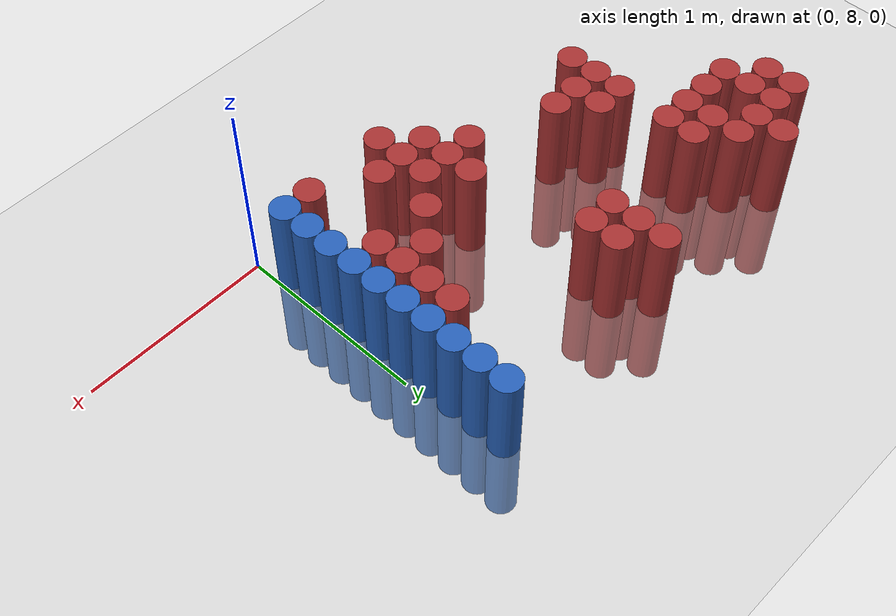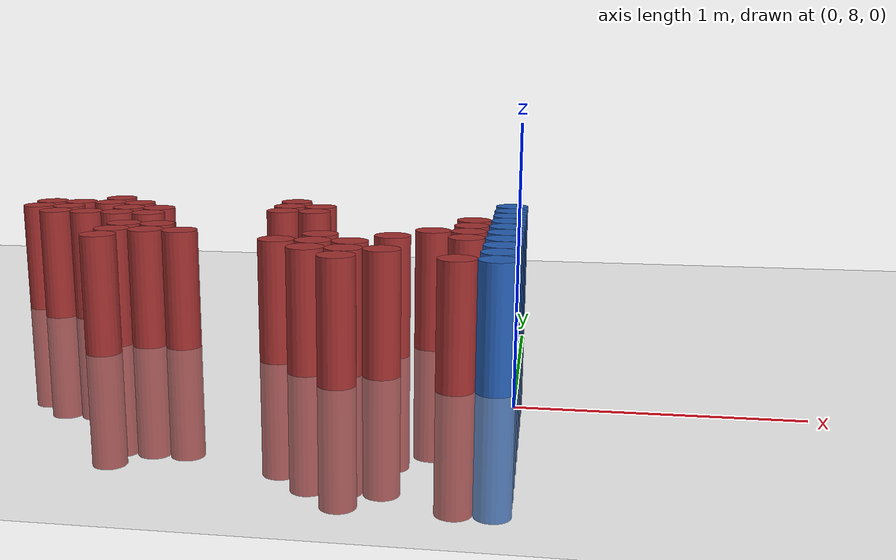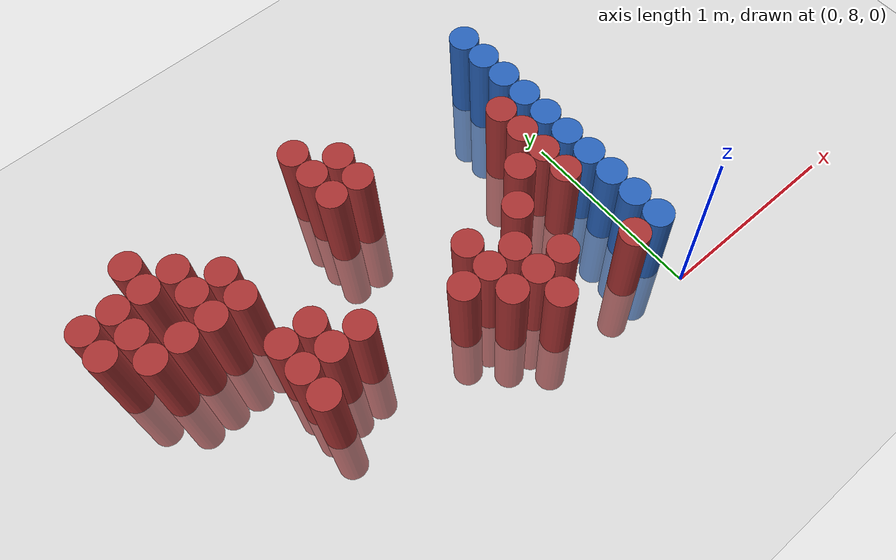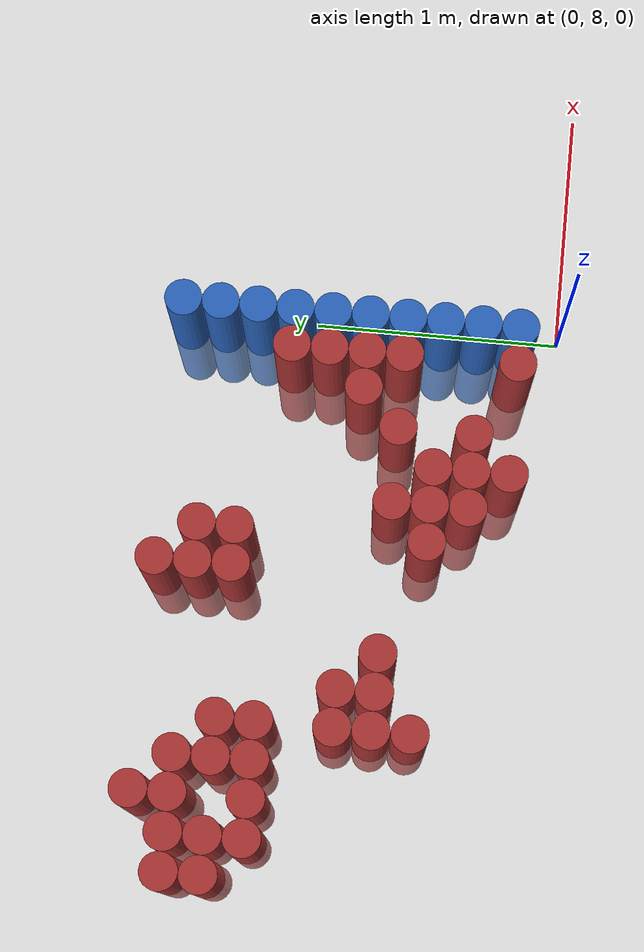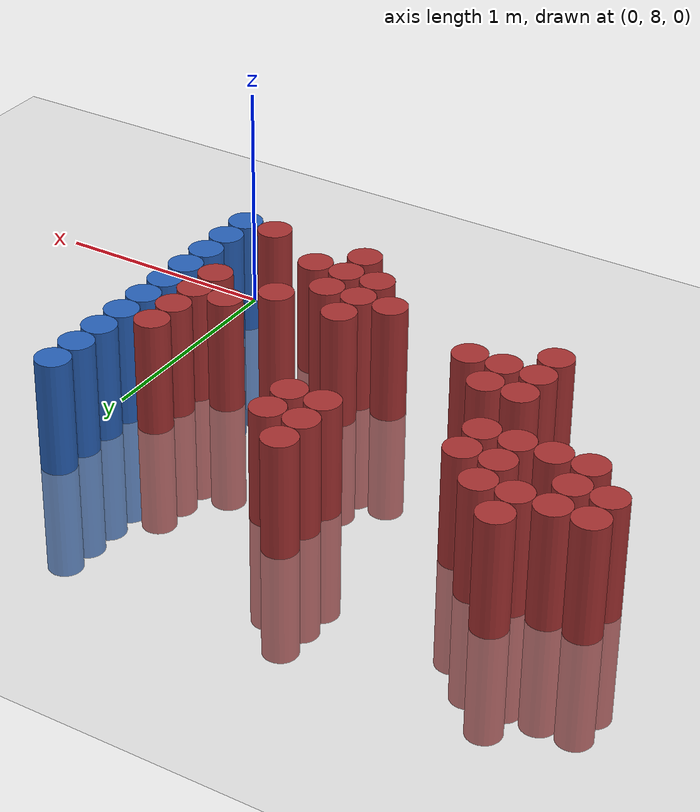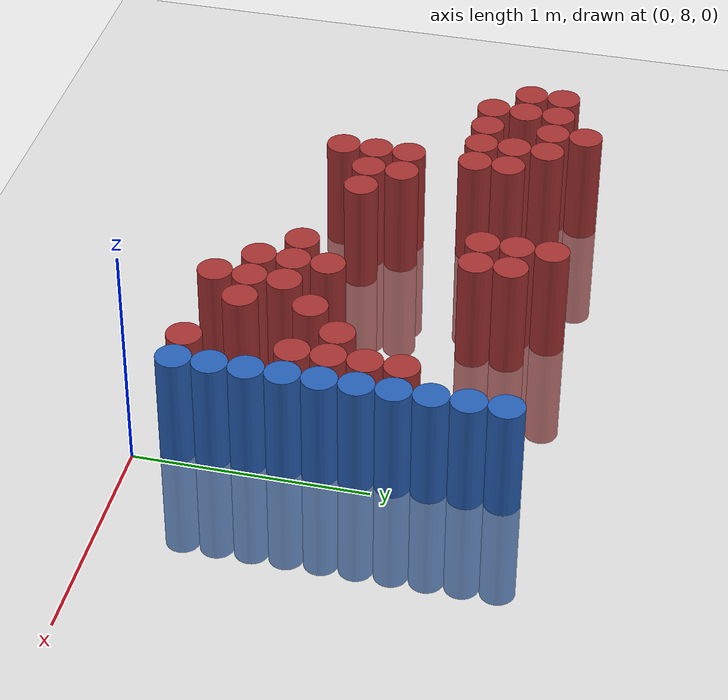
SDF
<sdf version="1.6">
 <world name="default">
  <model name="ground_plane">
   <static>1</static>
   <link name="link">
    <collision name="collision">
     <geometry><plane><normal>0 0 1</normal><size>100 100</size></plane></geometry>
     <surface><friction><ode><mu>100</mu><mu2>50</mu2></ode></friction></surface>
    </collision>
    <visual name="visual">
     <cast_shadows>0</cast_shadows>
     <geometry><plane><normal>0 0 1</normal><size>100 100</size></plane></geometry>
     <material>
      <script><uri>file://media/materials/scripts/gazebo.material</uri><name>Gazebo/Grey</name></script>
     </material>
    </visual>
   </link>
  </model>
  <model name="unit_cylinder_237">
   <static>1</static>
   <pose>-2.325000 9.225000 0.000000 0.000000 0.000000 0.000000</pose>
   <link name="link">
    <inertial>
     <mass>1</mass>
     <inertia><ixx>0.145833</ixx><ixy>0</ixy><ixz>0</ixz><iyy>0.145833</iyy><iyz>0</iyz><izz>0.125</izz></inertia>
    </inertial>
    <collision name="collision">
     <geometry><cylinder><radius>0.075000</radius><length>1</length></cylinder></geometry>
    </collision>
    <visual name="visual">
     <geometry><cylinder><radius>0.075000</radius><length>1</length></cylinder></geometry>
     <material>
      <ambient>0.648000 0.192000 0.192000 1</ambient>
      <diffuse>0.648000 0.192000 0.192000 1</diffuse>
     </material>
     <material>
      <script><name>Gazebo/Grey</name><uri>file://media/materials/scripts/gazebo.material</uri></script>
     </material>
    </visual>
   </link>
  </model>
  <model name="unit_cylinder_238">
   <static>1</static>
   <pose>-2.325000 9.375000 0.000000 0.000000 0.000000 0.000000</pose>
   <link name="link">
    <inertial>
     <mass>1</mass>
     <inertia><ixx>0.145833</ixx><ixy>0</ixy><ixz>0</ixz><iyy>0.145833</iyy><iyz>0</iyz><izz>0.125</izz></inertia>
    </inertial>
    <collision name="collision">
     <geometry><cylinder><radius>0.075000</radius><length>1</length></cylinder></geometry>
    </collision>
    <visual name="visual">
     <geometry><cylinder><radius>0.075000</radius><length>1</length></cylinder></geometry>
     <material>
      <ambient>0.648000 0.192000 0.192000 1</ambient>
      <diffuse>0.648000 0.192000 0.192000 1</diffuse>
     </material>
     <material>
      <script><name>Gazebo/Grey</name><uri>file://media/materials/scripts/gazebo.material</uri></script>
     </material>
    </visual>
   </link>
  </model>
  <model name="unit_cylinder_239">
   <static>1</static>
   <pose>-2.175000 9.075000 0.000000 0.000000 0.000000 0.000000</pose>
   <link name="link">
    <inertial>
     <mass>1</mass>
     <inertia><ixx>0.145833</ixx><ixy>0</ixy><ixz>0</ixz><iyy>0.145833</iyy><iyz>0</iyz><izz>0.125</izz></inertia>
    </inertial>
    <collision name="collision">
     <geometry><cylinder><radius>0.075000</radius><length>1</length></cylinder></geometry>
    </collision>
    <visual name="visual">
     <geometry><cylinder><radius>0.075000</radius><length>1</length></cylinder></geometry>
     <material>
      <ambient>0.648000 0.192000 0.192000 1</ambient>
      <diffuse>0.648000 0.192000 0.192000 1</diffuse>
     </material>
     <material>
      <script><name>Gazebo/Grey</name><uri>file://media/materials/scripts/gazebo.material</uri></script>
     </material>
    </visual>
   </link>
  </model>
  <model name="unit_cylinder_240">
   <static>1</static>
   <pose>-2.175000 9.225000 0.000000 0.000000 0.000000 0.000000</pose>
   <link name="link">
    <inertial>
     <mass>1</mass>
     <inertia><ixx>0.145833</ixx><ixy>0</ixy><ixz>0</ixz><iyy>0.145833</iyy><iyz>0</iyz><izz>0.125</izz></inertia>
    </inertial>
    <collision name="collision">
     <geometry><cylinder><radius>0.075000</radius><length>1</length></cylinder></geometry>
    </collision>
    <visual name="visual">
     <geometry><cylinder><radius>0.075000</radius><length>1</length></cylinder></geometry>
     <material>
      <ambient>0.648000 0.192000 0.192000 1</ambient>
      <diffuse>0.648000 0.192000 0.192000 1</diffuse>
     </material>
     <material>
      <script><name>Gazebo/Grey</name><uri>file://media/materials/scripts/gazebo.material</uri></script>
     </material>
    </visual>
   </link>
  </model>
  <model name="unit_cylinder_241">
   <static>1</static>
   <pose>-2.175000 9.375000 0.000000 0.000000 0.000000 0.000000</pose>
   <link name="link">
    <inertial>
     <mass>1</mass>
     <inertia><ixx>0.145833</ixx><ixy>0</ixy><ixz>0</ixz><iyy>0.145833</iyy><iyz>0</iyz><izz>0.125</izz></inertia>
    </inertial>
    <collision name="collision">
     <geometry><cylinder><radius>0.075000</radius><length>1</length></cylinder></geometry>
    </collision>
    <visual name="visual">
     <geometry><cylinder><radius>0.075000</radius><length>1</length></cylinder></geometry>
     <material>
      <ambient>0.648000 0.192000 0.192000 1</ambient>
      <diffuse>0.648000 0.192000 0.192000 1</diffuse>
     </material>
     <material>
      <script><name>Gazebo/Grey</name><uri>file://media/materials/scripts/gazebo.material</uri></script>
     </material>
    </visual>
   </link>
  </model>
  <model name="unit_cylinder_242">
   <static>1</static>
   <pose>-2.025000 9.075000 0.000000 0.000000 0.000000 0.000000</pose>
   <link name="link">
    <inertial>
     <mass>1</mass>
     <inertia><ixx>0.145833</ixx><ixy>0</ixy><ixz>0</ixz><iyy>0.145833</iyy><iyz>0</iyz><izz>0.125</izz></inertia>
    </inertial>
    <collision name="collision">
     <geometry><cylinder><radius>0.075000</radius><length>1</length></cylinder></geometry>
    </collision>
    <visual name="visual">
     <geometry><cylinder><radius>0.075000</radius><length>1</length></cylinder></geometry>
     <material>
      <ambient>0.648000 0.192000 0.192000 1</ambient>
      <diffuse>0.648000 0.192000 0.192000 1</diffuse>
     </material>
     <material>
      <script><name>Gazebo/Grey</name><uri>file://media/materials/scripts/gazebo.material</uri></script>
     </material>
    </visual>
   </link>
  </model>
  <model name="unit_cylinder_243">
   <static>1</static>
   <pose>-2.025000 9.375000 0.000000 0.000000 0.000000 0.000000</pose>
   <link name="link">
    <inertial>
     <mass>1</mass>
     <inertia><ixx>0.145833</ixx><ixy>0</ixy><ixz>0</ixz><iyy>0.145833</iyy><iyz>0</iyz><izz>0.125</izz></inertia>
    </inertial>
    <collision name="collision">
     <geometry><cylinder><radius>0.075000</radius><length>1</length></cylinder></geometry>
    </collision>
    <visual name="visual">
     <geometry><cylinder><radius>0.075000</radius><length>1</length></cylinder></geometry>
     <material>
      <ambient>0.648000 0.192000 0.192000 1</ambient>
      <diffuse>0.648000 0.192000 0.192000 1</diffuse>
     </material>
     <material>
      <script><name>Gazebo/Grey</name><uri>file://media/materials/scripts/gazebo.material</uri></script>
     </material>
    </visual>
   </link>
  </model>
  <model name="unit_cylinder_244">
   <static>1</static>
   <pose>-2.025000 9.525000 0.000000 0.000000 0.000000 0.000000</pose>
   <link name="link">
    <inertial>
     <mass>1</mass>
     <inertia><ixx>0.145833</ixx><ixy>0</ixy><ixz>0</ixz><iyy>0.145833</iyy><iyz>0</iyz><izz>0.125</izz></inertia>
    </inertial>
    <collision name="collision">
     <geometry><cylinder><radius>0.075000</radius><length>1</length></cylinder></geometry>
    </collision>
    <visual name="visual">
     <geometry><cylinder><radius>0.075000</radius><length>1</length></cylinder></geometry>
     <material>
      <ambient>0.648000 0.192000 0.192000 1</ambient>
      <diffuse>0.648000 0.192000 0.192000 1</diffuse>
     </material>
     <material>
      <script><name>Gazebo/Grey</name><uri>file://media/materials/scripts/gazebo.material</uri></script>
     </material>
    </visual>
   </link>
  </model>
  <model name="unit_cylinder_245">
   <static>1</static>
   <pose>-1.875000 9.075000 0.000000 0.000000 0.000000 0.000000</pose>
   <link name="link">
    <inertial>
     <mass>1</mass>
     <inertia><ixx>0.145833</ixx><ixy>0</ixy><ixz>0</ixz><iyy>0.145833</iyy><iyz>0</iyz><izz>0.125</izz></inertia>
    </inertial>
    <collision name="collision">
     <geometry><cylinder><radius>0.075000</radius><length>1</length></cylinder></geometry>
    </collision>
    <visual name="visual">
     <geometry><cylinder><radius>0.075000</radius><length>1</length></cylinder></geometry>
     <material>
      <ambient>0.648000 0.192000 0.192000 1</ambient>
      <diffuse>0.648000 0.192000 0.192000 1</diffuse>
     </material>
     <material>
      <script><name>Gazebo/Grey</name><uri>file://media/materials/scripts/gazebo.material</uri></script>
     </material>
    </visual>
   </link>
  </model>
  <model name="unit_cylinder_246">
   <static>1</static>
   <pose>-1.875000 9.225000 0.000000 0.000000 0.000000 0.000000</pose>
   <link name="link">
    <inertial>
     <mass>1</mass>
     <inertia><ixx>0.145833</ixx><ixy>0</ixy><ixz>0</ixz><iyy>0.145833</iyy><iyz>0</iyz><izz>0.125</izz></inertia>
    </inertial>
    <collision name="collision">
     <geometry><cylinder><radius>0.075000</radius><length>1</length></cylinder></geometry>
    </collision>
    <visual name="visual">
     <geometry><cylinder><radius>0.075000</radius><length>1</length></cylinder></geometry>
     <material>
      <ambient>0.648000 0.192000 0.192000 1</ambient>
      <diffuse>0.648000 0.192000 0.192000 1</diffuse>
     </material>
     <material>
      <script><name>Gazebo/Grey</name><uri>file://media/materials/scripts/gazebo.material</uri></script>
     </material>
    </visual>
   </link>
  </model>
  <model name="unit_cylinder_247">
   <static>1</static>
   <pose>-1.875000 9.375000 0.000000 0.000000 0.000000 0.000000</pose>
   <link name="link">
    <inertial>
     <mass>1</mass>
     <inertia><ixx>0.145833</ixx><ixy>0</ixy><ixz>0</ixz><iyy>0.145833</iyy><iyz>0</iyz><izz>0.125</izz></inertia>
    </inertial>
    <collision name="collision">
     <geometry><cylinder><radius>0.075000</radius><length>1</length></cylinder></geometry>
    </collision>
    <visual name="visual">
     <geometry><cylinder><radius>0.075000</radius><length>1</length></cylinder></geometry>
     <material>
      <ambient>0.648000 0.192000 0.192000 1</ambient>
      <diffuse>0.648000 0.192000 0.192000 1</diffuse>
     </material>
     <material>
      <script><name>Gazebo/Grey</name><uri>file://media/materials/scripts/gazebo.material</uri></script>
     </material>
    </visual>
   </link>
  </model>
  <model name="unit_cylinder_249">
   <static>1</static>
   <pose>-1.725000 8.475000 0.000000 0.000000 0.000000 0.000000</pose>
   <link name="link">
    <inertial>
     <mass>1</mass>
     <inertia><ixx>0.145833</ixx><ixy>0</ixy><ixz>0</ixz><iyy>0.145833</iyy><iyz>0</iyz><izz>0.125</izz></inertia>
    </inertial>
    <collision name="collision">
     <geometry><cylinder><radius>0.075000</radius><length>1</length></cylinder></geometry>
    </collision>
    <visual name="visual">
     <geometry><cylinder><radius>0.075000</radius><length>1</length></cylinder></geometry>
     <material>
      <ambient>0.648000 0.192000 0.192000 1</ambient>
      <diffuse>0.648000 0.192000 0.192000 1</diffuse>
     </material>
     <material>
      <script><name>Gazebo/Grey</name><uri>file://media/materials/scripts/gazebo.material</uri></script>
     </material>
    </visual>
   </link>
  </model>
  <model name="unit_cylinder_250">
   <static>1</static>
   <pose>-1.725000 8.625000 0.000000 0.000000 0.000000 0.000000</pose>
   <link name="link">
    <inertial>
     <mass>1</mass>
     <inertia><ixx>0.145833</ixx><ixy>0</ixy><ixz>0</ixz><iyy>0.145833</iyy><iyz>0</iyz><izz>0.125</izz></inertia>
    </inertial>
    <collision name="collision">
     <geometry><cylinder><radius>0.075000</radius><length>1</length></cylinder></geometry>
    </collision>
    <visual name="visual">
     <geometry><cylinder><radius>0.075000</radius><length>1</length></cylinder></geometry>
     <material>
      <ambient>0.648000 0.192000 0.192000 1</ambient>
      <diffuse>0.648000 0.192000 0.192000 1</diffuse>
     </material>
     <material>
      <script><name>Gazebo/Grey</name><uri>file://media/materials/scripts/gazebo.material</uri></script>
     </material>
    </visual>
   </link>
  </model>
  <model name="unit_cylinder_251">
   <static>1</static>
   <pose>-1.725000 8.775000 0.000000 0.000000 0.000000 0.000000</pose>
   <link name="link">
    <inertial>
     <mass>1</mass>
     <inertia><ixx>0.145833</ixx><ixy>0</ixy><ixz>0</ixz><iyy>0.145833</iyy><iyz>0</iyz><izz>0.125</izz></inertia>
    </inertial>
    <collision name="collision">
     <geometry><cylinder><radius>0.075000</radius><length>1</length></cylinder></geometry>
    </collision>
    <visual name="visual">
     <geometry><cylinder><radius>0.075000</radius><length>1</length></cylinder></geometry>
     <material>
      <ambient>0.648000 0.192000 0.192000 1</ambient>
      <diffuse>0.648000 0.192000 0.192000 1</diffuse>
     </material>
     <material>
      <script><name>Gazebo/Grey</name><uri>file://media/materials/scripts/gazebo.material</uri></script>
     </material>
    </visual>
   </link>
  </model>
  <model name="unit_cylinder_252">
   <static>1</static>
   <pose>-1.725000 9.075000 0.000000 0.000000 0.000000 0.000000</pose>
   <link name="link">
    <inertial>
     <mass>1</mass>
     <inertia><ixx>0.145833</ixx><ixy>0</ixy><ixz>0</ixz><iyy>0.145833</iyy><iyz>0</iyz><izz>0.125</izz></inertia>
    </inertial>
    <collision name="collision">
     <geometry><cylinder><radius>0.075000</radius><length>1</length></cylinder></geometry>
    </collision>
    <visual name="visual">
     <geometry><cylinder><radius>0.075000</radius><length>1</length></cylinder></geometry>
     <material>
      <ambient>0.648000 0.192000 0.192000 1</ambient>
      <diffuse>0.648000 0.192000 0.192000 1</diffuse>
     </material>
     <material>
      <script><name>Gazebo/Grey</name><uri>file://media/materials/scripts/gazebo.material</uri></script>
     </material>
    </visual>
   </link>
  </model>
  <model name="unit_cylinder_253">
   <static>1</static>
   <pose>-1.725000 9.225000 0.000000 0.000000 0.000000 0.000000</pose>
   <link name="link">
    <inertial>
     <mass>1</mass>
     <inertia><ixx>0.145833</ixx><ixy>0</ixy><ixz>0</ixz><iyy>0.145833</iyy><iyz>0</iyz><izz>0.125</izz></inertia>
    </inertial>
    <collision name="collision">
     <geometry><cylinder><radius>0.075000</radius><length>1</length></cylinder></geometry>
    </collision>
    <visual name="visual">
     <geometry><cylinder><radius>0.075000</radius><length>1</length></cylinder></geometry>
     <material>
      <ambient>0.648000 0.192000 0.192000 1</ambient>
      <diffuse>0.648000 0.192000 0.192000 1</diffuse>
     </material>
     <material>
      <script><name>Gazebo/Grey</name><uri>file://media/materials/scripts/gazebo.material</uri></script>
     </material>
    </visual>
   </link>
  </model>
  <model name="unit_cylinder_254">
   <static>1</static>
   <pose>-1.575000 8.625000 0.000000 0.000000 0.000000 0.000000</pose>
   <link name="link">
    <inertial>
     <mass>1</mass>
     <inertia><ixx>0.145833</ixx><ixy>0</ixy><ixz>0</ixz><iyy>0.145833</iyy><iyz>0</iyz><izz>0.125</izz></inertia>
    </inertial>
    <collision name="collision">
     <geometry><cylinder><radius>0.075000</radius><length>1</length></cylinder></geometry>
    </collision>
    <visual name="visual">
     <geometry><cylinder><radius>0.075000</radius><length>1</length></cylinder></geometry>
     <material>
      <ambient>0.648000 0.192000 0.192000 1</ambient>
      <diffuse>0.648000 0.192000 0.192000 1</diffuse>
     </material>
     <material>
      <script><name>Gazebo/Grey</name><uri>file://media/materials/scripts/gazebo.material</uri></script>
     </material>
    </visual>
   </link>
  </model>
  <model name="unit_cylinder_255">
   <static>1</static>
   <pose>-1.575000 8.775000 0.000000 0.000000 0.000000 0.000000</pose>
   <link name="link">
    <inertial>
     <mass>1</mass>
     <inertia><ixx>0.145833</ixx><ixy>0</ixy><ixz>0</ixz><iyy>0.145833</iyy><iyz>0</iyz><izz>0.125</izz></inertia>
    </inertial>
    <collision name="collision">
     <geometry><cylinder><radius>0.075000</radius><length>1</length></cylinder></geometry>
    </collision>
    <visual name="visual">
     <geometry><cylinder><radius>0.075000</radius><length>1</length></cylinder></geometry>
     <material>
      <ambient>0.648000 0.192000 0.192000 1</ambient>
      <diffuse>0.648000 0.192000 0.192000 1</diffuse>
     </material>
     <material>
      <script><name>Gazebo/Grey</name><uri>file://media/materials/scripts/gazebo.material</uri></script>
     </material>
    </visual>
   </link>
  </model>
  <model name="unit_cylinder_256">
   <static>1</static>
   <pose>-1.425000 8.625000 0.000000 0.000000 0.000000 0.000000</pose>
   <link name="link">
    <inertial>
     <mass>1</mass>
     <inertia><ixx>0.145833</ixx><ixy>0</ixy><ixz>0</ixz><iyy>0.145833</iyy><iyz>0</iyz><izz>0.125</izz></inertia>
    </inertial>
    <collision name="collision">
     <geometry><cylinder><radius>0.075000</radius><length>1</length></cylinder></geometry>
    </collision>
    <visual name="visual">
     <geometry><cylinder><radius>0.075000</radius><length>1</length></cylinder></geometry>
     <material>
      <ambient>0.648000 0.192000 0.192000 1</ambient>
      <diffuse>0.648000 0.192000 0.192000 1</diffuse>
     </material>
     <material>
      <script><name>Gazebo/Grey</name><uri>file://media/materials/scripts/gazebo.material</uri></script>
     </material>
    </visual>
   </link>
  </model>
  <model name="unit_cylinder_266">
   <static>1</static>
   <pose>-1.125000 9.225000 0.000000 0.000000 0.000000 0.000000</pose>
   <link name="link">
    <inertial>
     <mass>1</mass>
     <inertia><ixx>0.145833</ixx><ixy>0</ixy><ixz>0</ixz><iyy>0.145833</iyy><iyz>0</iyz><izz>0.125</izz></inertia>
    </inertial>
    <collision name="collision">
     <geometry><cylinder><radius>0.075000</radius><length>1</length></cylinder></geometry>
    </collision>
    <visual name="visual">
     <geometry><cylinder><radius>0.075000</radius><length>1</length></cylinder></geometry>
     <material>
      <ambient>0.648000 0.192000 0.192000 1</ambient>
      <diffuse>0.648000 0.192000 0.192000 1</diffuse>
     </material>
     <material>
      <script><name>Gazebo/Grey</name><uri>file://media/materials/scripts/gazebo.material</uri></script>
     </material>
    </visual>
   </link>
  </model>
  <model name="unit_cylinder_267">
   <static>1</static>
   <pose>-1.125000 9.375000 0.000000 0.000000 0.000000 0.000000</pose>
   <link name="link">
    <inertial>
     <mass>1</mass>
     <inertia><ixx>0.145833</ixx><ixy>0</ixy><ixz>0</ixz><iyy>0.145833</iyy><iyz>0</iyz><izz>0.125</izz></inertia>
    </inertial>
    <collision name="collision">
     <geometry><cylinder><radius>0.075000</radius><length>1</length></cylinder></geometry>
    </collision>
    <visual name="visual">
     <geometry><cylinder><radius>0.075000</radius><length>1</length></cylinder></geometry>
     <material>
      <ambient>0.648000 0.192000 0.192000 1</ambient>
      <diffuse>0.648000 0.192000 0.192000 1</diffuse>
     </material>
     <material>
      <script><name>Gazebo/Grey</name><uri>file://media/materials/scripts/gazebo.material</uri></script>
     </material>
    </visual>
   </link>
  </model>
  <model name="unit_cylinder_268">
   <static>1</static>
   <pose>-1.125000 9.525000 0.000000 0.000000 0.000000 0.000000</pose>
   <link name="link">
    <inertial>
     <mass>1</mass>
     <inertia><ixx>0.145833</ixx><ixy>0</ixy><ixz>0</ixz><iyy>0.145833</iyy><iyz>0</iyz><izz>0.125</izz></inertia>
    </inertial>
    <collision name="collision">
     <geometry><cylinder><radius>0.075000</radius><length>1</length></cylinder></geometry>
    </collision>
    <visual name="visual">
     <geometry><cylinder><radius>0.075000</radius><length>1</length></cylinder></geometry>
     <material>
      <ambient>0.648000 0.192000 0.192000 1</ambient>
      <diffuse>0.648000 0.192000 0.192000 1</diffuse>
     </material>
     <material>
      <script><name>Gazebo/Grey</name><uri>file://media/materials/scripts/gazebo.material</uri></script>
     </material>
    </visual>
   </link>
  </model>
  <model name="unit_cylinder_273">
   <static>1</static>
   <pose>-0.975000 8.475000 0.000000 0.000000 0.000000 0.000000</pose>
   <link name="link">
    <inertial>
     <mass>1</mass>
     <inertia><ixx>0.145833</ixx><ixy>0</ixy><ixz>0</ixz><iyy>0.145833</iyy><iyz>0</iyz><izz>0.125</izz></inertia>
    </inertial>
    <collision name="collision">
     <geometry><cylinder><radius>0.075000</radius><length>1</length></cylinder></geometry>
    </collision>
    <visual name="visual">
     <geometry><cylinder><radius>0.075000</radius><length>1</length></cylinder></geometry>
     <material>
      <ambient>0.648000 0.192000 0.192000 1</ambient>
      <diffuse>0.648000 0.192000 0.192000 1</diffuse>
     </material>
     <material>
      <script><name>Gazebo/Grey</name><uri>file://media/materials/scripts/gazebo.material</uri></script>
     </material>
    </visual>
   </link>
  </model>
  <model name="unit_cylinder_274">
   <static>1</static>
   <pose>-0.975000 9.225000 0.000000 0.000000 0.000000 0.000000</pose>
   <link name="link">
    <inertial>
     <mass>1</mass>
     <inertia><ixx>0.145833</ixx><ixy>0</ixy><ixz>0</ixz><iyy>0.145833</iyy><iyz>0</iyz><izz>0.125</izz></inertia>
    </inertial>
    <collision name="collision">
     <geometry><cylinder><radius>0.075000</radius><length>1</length></cylinder></geometry>
    </collision>
    <visual name="visual">
     <geometry><cylinder><radius>0.075000</radius><length>1</length></cylinder></geometry>
     <material>
      <ambient>0.648000 0.192000 0.192000 1</ambient>
      <diffuse>0.648000 0.192000 0.192000 1</diffuse>
     </material>
     <material>
      <script><name>Gazebo/Grey</name><uri>file://media/materials/scripts/gazebo.material</uri></script>
     </material>
    </visual>
   </link>
  </model>
  <model name="unit_cylinder_275">
   <static>1</static>
   <pose>-0.975000 9.375000 0.000000 0.000000 0.000000 0.000000</pose>
   <link name="link">
    <inertial>
     <mass>1</mass>
     <inertia><ixx>0.145833</ixx><ixy>0</ixy><ixz>0</ixz><iyy>0.145833</iyy><iyz>0</iyz><izz>0.125</izz></inertia>
    </inertial>
    <collision name="collision">
     <geometry><cylinder><radius>0.075000</radius><length>1</length></cylinder></geometry>
    </collision>
    <visual name="visual">
     <geometry><cylinder><radius>0.075000</radius><length>1</length></cylinder></geometry>
     <material>
      <ambient>0.648000 0.192000 0.192000 1</ambient>
      <diffuse>0.648000 0.192000 0.192000 1</diffuse>
     </material>
     <material>
      <script><name>Gazebo/Grey</name><uri>file://media/materials/scripts/gazebo.material</uri></script>
     </material>
    </visual>
   </link>
  </model>
  <model name="unit_cylinder_280">
   <static>1</static>
   <pose>-0.825000 8.325000 0.000000 0.000000 0.000000 0.000000</pose>
   <link name="link">
    <inertial>
     <mass>1</mass>
     <inertia><ixx>0.145833</ixx><ixy>0</ixy><ixz>0</ixz><iyy>0.145833</iyy><iyz>0</iyz><izz>0.125</izz></inertia>
    </inertial>
    <collision name="collision">
     <geometry><cylinder><radius>0.075000</radius><length>1</length></cylinder></geometry>
    </collision>
    <visual name="visual">
     <geometry><cylinder><radius>0.075000</radius><length>1</length></cylinder></geometry>
     <material>
      <ambient>0.648000 0.192000 0.192000 1</ambient>
      <diffuse>0.648000 0.192000 0.192000 1</diffuse>
     </material>
     <material>
      <script><name>Gazebo/Grey</name><uri>file://media/materials/scripts/gazebo.material</uri></script>
     </material>
    </visual>
   </link>
  </model>
  <model name="unit_cylinder_281">
   <static>1</static>
   <pose>-0.825000 8.475000 0.000000 0.000000 0.000000 0.000000</pose>
   <link name="link">
    <inertial>
     <mass>1</mass>
     <inertia><ixx>0.145833</ixx><ixy>0</ixy><ixz>0</ixz><iyy>0.145833</iyy><iyz>0</iyz><izz>0.125</izz></inertia>
    </inertial>
    <collision name="collision">
     <geometry><cylinder><radius>0.075000</radius><length>1</length></cylinder></geometry>
    </collision>
    <visual name="visual">
     <geometry><cylinder><radius>0.075000</radius><length>1</length></cylinder></geometry>
     <material>
      <ambient>0.648000 0.192000 0.192000 1</ambient>
      <diffuse>0.648000 0.192000 0.192000 1</diffuse>
     </material>
     <material>
      <script><name>Gazebo/Grey</name><uri>file://media/materials/scripts/gazebo.material</uri></script>
     </material>
    </visual>
   </link>
  </model>
  <model name="unit_cylinder_282">
   <static>1</static>
   <pose>-0.825000 8.625000 0.000000 0.000000 0.000000 0.000000</pose>
   <link name="link">
    <inertial>
     <mass>1</mass>
     <inertia><ixx>0.145833</ixx><ixy>0</ixy><ixz>0</ixz><iyy>0.145833</iyy><iyz>0</iyz><izz>0.125</izz></inertia>
    </inertial>
    <collision name="collision">
     <geometry><cylinder><radius>0.075000</radius><length>1</length></cylinder></geometry>
    </collision>
    <visual name="visual">
     <geometry><cylinder><radius>0.075000</radius><length>1</length></cylinder></geometry>
     <material>
      <ambient>0.648000 0.192000 0.192000 1</ambient>
      <diffuse>0.648000 0.192000 0.192000 1</diffuse>
     </material>
     <material>
      <script><name>Gazebo/Grey</name><uri>file://media/materials/scripts/gazebo.material</uri></script>
     </material>
    </visual>
   </link>
  </model>
  <model name="unit_cylinder_285">
   <static>1</static>
   <pose>-0.675000 8.175000 0.000000 0.000000 0.000000 0.000000</pose>
   <link name="link">
    <inertial>
     <mass>1</mass>
     <inertia><ixx>0.145833</ixx><ixy>0</ixy><ixz>0</ixz><iyy>0.145833</iyy><iyz>0</iyz><izz>0.125</izz></inertia>
    </inertial>
    <collision name="collision">
     <geometry><cylinder><radius>0.075000</radius><length>1</length></cylinder></geometry>
    </collision>
    <visual name="visual">
     <geometry><cylinder><radius>0.075000</radius><length>1</length></cylinder></geometry>
     <material>
      <ambient>0.648000 0.192000 0.192000 1</ambient>
      <diffuse>0.648000 0.192000 0.192000 1</diffuse>
     </material>
     <material>
      <script><name>Gazebo/Grey</name><uri>file://media/materials/scripts/gazebo.material</uri></script>
     </material>
    </visual>
   </link>
  </model>
  <model name="unit_cylinder_286">
   <static>1</static>
   <pose>-0.675000 8.325000 0.000000 0.000000 0.000000 0.000000</pose>
   <link name="link">
    <inertial>
     <mass>1</mass>
     <inertia><ixx>0.145833</ixx><ixy>0</ixy><ixz>0</ixz><iyy>0.145833</iyy><iyz>0</iyz><izz>0.125</izz></inertia>
    </inertial>
    <collision name="collision">
     <geometry><cylinder><radius>0.075000</radius><length>1</length></cylinder></geometry>
    </collision>
    <visual name="visual">
     <geometry><cylinder><radius>0.075000</radius><length>1</length></cylinder></geometry>
     <material>
      <ambient>0.648000 0.192000 0.192000 1</ambient>
      <diffuse>0.648000 0.192000 0.192000 1</diffuse>
     </material>
     <material>
      <script><name>Gazebo/Grey</name><uri>file://media/materials/scripts/gazebo.material</uri></script>
     </material>
    </visual>
   </link>
  </model>
  <model name="unit_cylinder_287">
   <static>1</static>
   <pose>-0.675000 8.475000 0.000000 0.000000 0.000000 0.000000</pose>
   <link name="link">
    <inertial>
     <mass>1</mass>
     <inertia><ixx>0.145833</ixx><ixy>0</ixy><ixz>0</ixz><iyy>0.145833</iyy><iyz>0</iyz><izz>0.125</izz></inertia>
    </inertial>
    <collision name="collision">
     <geometry><cylinder><radius>0.075000</radius><length>1</length></cylinder></geometry>
    </collision>
    <visual name="visual">
     <geometry><cylinder><radius>0.075000</radius><length>1</length></cylinder></geometry>
     <material>
      <ambient>0.648000 0.192000 0.192000 1</ambient>
      <diffuse>0.648000 0.192000 0.192000 1</diffuse>
     </material>
     <material>
      <script><name>Gazebo/Grey</name><uri>file://media/materials/scripts/gazebo.material</uri></script>
     </material>
    </visual>
   </link>
  </model>
  <model name="unit_cylinder_290">
   <static>1</static>
   <pose>-0.525000 8.325000 0.000000 0.000000 0.000000 0.000000</pose>
   <link name="link">
    <inertial>
     <mass>1</mass>
     <inertia><ixx>0.145833</ixx><ixy>0</ixy><ixz>0</ixz><iyy>0.145833</iyy><iyz>0</iyz><izz>0.125</izz></inertia>
    </inertial>
    <collision name="collision">
     <geometry><cylinder><radius>0.075000</radius><length>1</length></cylinder></geometry>
    </collision>
    <visual name="visual">
     <geometry><cylinder><radius>0.075000</radius><length>1</length></cylinder></geometry>
     <material>
      <ambient>0.648000 0.192000 0.192000 1</ambient>
      <diffuse>0.648000 0.192000 0.192000 1</diffuse>
     </material>
     <material>
      <script><name>Gazebo/Grey</name><uri>file://media/materials/scripts/gazebo.material</uri></script>
     </material>
    </visual>
   </link>
  </model>
  <model name="unit_cylinder_291">
   <static>1</static>
   <pose>-0.525000 8.625000 0.000000 0.000000 0.000000 0.000000</pose>
   <link name="link">
    <inertial>
     <mass>1</mass>
     <inertia><ixx>0.145833</ixx><ixy>0</ixy><ixz>0</ixz><iyy>0.145833</iyy><iyz>0</iyz><izz>0.125</izz></inertia>
    </inertial>
    <collision name="collision">
     <geometry><cylinder><radius>0.075000</radius><length>1</length></cylinder></geometry>
    </collision>
    <visual name="visual">
     <geometry><cylinder><radius>0.075000</radius><length>1</length></cylinder></geometry>
     <material>
      <ambient>0.648000 0.192000 0.192000 1</ambient>
      <diffuse>0.648000 0.192000 0.192000 1</diffuse>
     </material>
     <material>
      <script><name>Gazebo/Grey</name><uri>file://media/materials/scripts/gazebo.material</uri></script>
     </material>
    </visual>
   </link>
  </model>
  <model name="unit_cylinder_293">
   <static>1</static>
   <pose>-0.375000 8.775000 0.000000 0.000000 0.000000 0.000000</pose>
   <link name="link">
    <inertial>
     <mass>1</mass>
     <inertia><ixx>0.145833</ixx><ixy>0</ixy><ixz>0</ixz><iyy>0.145833</iyy><iyz>0</iyz><izz>0.125</izz></inertia>
    </inertial>
    <collision name="collision">
     <geometry><cylinder><radius>0.075000</radius><length>1</length></cylinder></geometry>
    </collision>
    <visual name="visual">
     <geometry><cylinder><radius>0.075000</radius><length>1</length></cylinder></geometry>
     <material>
      <ambient>0.648000 0.192000 0.192000 1</ambient>
      <diffuse>0.648000 0.192000 0.192000 1</diffuse>
     </material>
     <material>
      <script><name>Gazebo/Grey</name><uri>file://media/materials/scripts/gazebo.material</uri></script>
     </material>
    </visual>
   </link>
  </model>
  <model name="unit_cylinder_303">
   <static>1</static>
   <pose>-0.225000 8.175000 0.000000 0.000000 0.000000 0.000000</pose>
   <link name="link">
    <inertial>
     <mass>1</mass>
     <inertia><ixx>0.145833</ixx><ixy>0</ixy><ixz>0</ixz><iyy>0.145833</iyy><iyz>0</iyz><izz>0.125</izz></inertia>
    </inertial>
    <collision name="collision">
     <geometry><cylinder><radius>0.075000</radius><length>1</length></cylinder></geometry>
    </collision>
    <visual name="visual">
     <geometry><cylinder><radius>0.075000</radius><length>1</length></cylinder></geometry>
     <material>
      <ambient>0.648000 0.192000 0.192000 1</ambient>
      <diffuse>0.648000 0.192000 0.192000 1</diffuse>
     </material>
     <material>
      <script><name>Gazebo/Grey</name><uri>file://media/materials/scripts/gazebo.material</uri></script>
     </material>
    </visual>
   </link>
  </model>
  <model name="unit_cylinder_304">
   <static>1</static>
   <pose>-0.225000 8.625000 0.000000 0.000000 0.000000 0.000000</pose>
   <link name="link">
    <inertial>
     <mass>1</mass>
     <inertia><ixx>0.145833</ixx><ixy>0</ixy><ixz>0</ixz><iyy>0.145833</iyy><iyz>0</iyz><izz>0.125</izz></inertia>
    </inertial>
    <collision name="collision">
     <geometry><cylinder><radius>0.075000</radius><length>1</length></cylinder></geometry>
    </collision>
    <visual name="visual">
     <geometry><cylinder><radius>0.075000</radius><length>1</length></cylinder></geometry>
     <material>
      <ambient>0.648000 0.192000 0.192000 1</ambient>
      <diffuse>0.648000 0.192000 0.192000 1</diffuse>
     </material>
     <material>
      <script><name>Gazebo/Grey</name><uri>file://media/materials/scripts/gazebo.material</uri></script>
     </material>
    </visual>
   </link>
  </model>
  <model name="unit_cylinder_305">
   <static>1</static>
   <pose>-0.225000 8.775000 0.000000 0.000000 0.000000 0.000000</pose>
   <link name="link">
    <inertial>
     <mass>1</mass>
     <inertia><ixx>0.145833</ixx><ixy>0</ixy><ixz>0</ixz><iyy>0.145833</iyy><iyz>0</iyz><izz>0.125</izz></inertia>
    </inertial>
    <collision name="collision">
     <geometry><cylinder><radius>0.075000</radius><length>1</length></cylinder></geometry>
    </collision>
    <visual name="visual">
     <geometry><cylinder><radius>0.075000</radius><length>1</length></cylinder></geometry>
     <material>
      <ambient>0.648000 0.192000 0.192000 1</ambient>
      <diffuse>0.648000 0.192000 0.192000 1</diffuse>
     </material>
     <material>
      <script><name>Gazebo/Grey</name><uri>file://media/materials/scripts/gazebo.material</uri></script>
     </material>
    </visual>
   </link>
  </model>
  <model name="unit_cylinder_306">
   <static>1</static>
   <pose>-0.225000 8.925000 0.000000 0.000000 0.000000 0.000000</pose>
   <link name="link">
    <inertial>
     <mass>1</mass>
     <inertia><ixx>0.145833</ixx><ixy>0</ixy><ixz>0</ixz><iyy>0.145833</iyy><iyz>0</iyz><izz>0.125</izz></inertia>
    </inertial>
    <collision name="collision">
     <geometry><cylinder><radius>0.075000</radius><length>1</length></cylinder></geometry>
    </collision>
    <visual name="visual">
     <geometry><cylinder><radius>0.075000</radius><length>1</length></cylinder></geometry>
     <material>
      <ambient>0.648000 0.192000 0.192000 1</ambient>
      <diffuse>0.648000 0.192000 0.192000 1</diffuse>
     </material>
     <material>
      <script><name>Gazebo/Grey</name><uri>file://media/materials/scripts/gazebo.material</uri></script>
     </material>
    </visual>
   </link>
  </model>
  <model name="unit_cylinder_307">
   <static>1</static>
   <pose>-0.225000 9.075000 0.000000 0.000000 0.000000 0.000000</pose>
   <link name="link">
    <inertial>
     <mass>1</mass>
     <inertia><ixx>0.145833</ixx><ixy>0</ixy><ixz>0</ixz><iyy>0.145833</iyy><iyz>0</iyz><izz>0.125</izz></inertia>
    </inertial>
    <collision name="collision">
     <geometry><cylinder><radius>0.075000</radius><length>1</length></cylinder></geometry>
    </collision>
    <visual name="visual">
     <geometry><cylinder><radius>0.075000</radius><length>1</length></cylinder></geometry>
     <material>
      <ambient>0.648000 0.192000 0.192000 1</ambient>
      <diffuse>0.648000 0.192000 0.192000 1</diffuse>
     </material>
     <material>
      <script><name>Gazebo/Grey</name><uri>file://media/materials/scripts/gazebo.material</uri></script>
     </material>
    </visual>
   </link>
  </model>
  <model name="unit_cylinder_328">
   <static>1</static>
   <pose>-0.075000 8.175000 0.000000 0.000000 0.000000 0.000000</pose>
   <link name="link">
    <inertial>
     <mass>1</mass>
     <inertia><ixx>0.145833</ixx><ixy>0</ixy><ixz>0</ixz><iyy>0.145833</iyy><iyz>0</iyz><izz>0.125</izz></inertia>
    </inertial>
    <collision name="collision">
     <geometry><cylinder><radius>0.075000</radius><length>1</length></cylinder></geometry>
    </collision>
    <visual name="visual">
     <geometry><cylinder><radius>0.075000</radius><length>1</length></cylinder></geometry>
     <material>
      <ambient>0.152000 0.379000 0.720000 1</ambient>
      <diffuse>0.152000 0.379000 0.720000 1</diffuse>
     </material>
     <material>
      <script><name>Gazebo/Grey</name><uri>file://media/materials/scripts/gazebo.material</uri></script>
     </material>
    </visual>
   </link>
  </model>
  <model name="unit_cylinder_329">
   <static>1</static>
   <pose>-0.075000 8.325000 0.000000 0.000000 0.000000 0.000000</pose>
   <link name="link">
    <inertial>
     <mass>1</mass>
     <inertia><ixx>0.145833</ixx><ixy>0</ixy><ixz>0</ixz><iyy>0.145833</iyy><iyz>0</iyz><izz>0.125</izz></inertia>
    </inertial>
    <collision name="collision">
     <geometry><cylinder><radius>0.075000</radius><length>1</length></cylinder></geometry>
    </collision>
    <visual name="visual">
     <geometry><cylinder><radius>0.075000</radius><length>1</length></cylinder></geometry>
     <material>
      <ambient>0.152000 0.379000 0.720000 1</ambient>
      <diffuse>0.152000 0.379000 0.720000 1</diffuse>
     </material>
     <material>
      <script><name>Gazebo/Grey</name><uri>file://media/materials/scripts/gazebo.material</uri></script>
     </material>
    </visual>
   </link>
  </model>
  <model name="unit_cylinder_330">
   <static>1</static>
   <pose>-0.075000 8.475000 0.000000 0.000000 0.000000 0.000000</pose>
   <link name="link">
    <inertial>
     <mass>1</mass>
     <inertia><ixx>0.145833</ixx><ixy>0</ixy><ixz>0</ixz><iyy>0.145833</iyy><iyz>0</iyz><izz>0.125</izz></inertia>
    </inertial>
    <collision name="collision">
     <geometry><cylinder><radius>0.075000</radius><length>1</length></cylinder></geometry>
    </collision>
    <visual name="visual">
     <geometry><cylinder><radius>0.075000</radius><length>1</length></cylinder></geometry>
     <material>
      <ambient>0.152000 0.379000 0.720000 1</ambient>
      <diffuse>0.152000 0.379000 0.720000 1</diffuse>
     </material>
     <material>
      <script><name>Gazebo/Grey</name><uri>file://media/materials/scripts/gazebo.material</uri></script>
     </material>
    </visual>
   </link>
  </model>
  <model name="unit_cylinder_331">
   <static>1</static>
   <pose>-0.075000 8.625000 0.000000 0.000000 0.000000 0.000000</pose>
   <link name="link">
    <inertial>
     <mass>1</mass>
     <inertia><ixx>0.145833</ixx><ixy>0</ixy><ixz>0</ixz><iyy>0.145833</iyy><iyz>0</iyz><izz>0.125</izz></inertia>
    </inertial>
    <collision name="collision">
     <geometry><cylinder><radius>0.075000</radius><length>1</length></cylinder></geometry>
    </collision>
    <visual name="visual">
     <geometry><cylinder><radius>0.075000</radius><length>1</length></cylinder></geometry>
     <material>
      <ambient>0.152000 0.379000 0.720000 1</ambient>
      <diffuse>0.152000 0.379000 0.720000 1</diffuse>
     </material>
     <material>
      <script><name>Gazebo/Grey</name><uri>file://media/materials/scripts/gazebo.material</uri></script>
     </material>
    </visual>
   </link>
  </model>
  <model name="unit_cylinder_332">
   <static>1</static>
   <pose>-0.075000 8.775000 0.000000 0.000000 0.000000 0.000000</pose>
   <link name="link">
    <inertial>
     <mass>1</mass>
     <inertia><ixx>0.145833</ixx><ixy>0</ixy><ixz>0</ixz><iyy>0.145833</iyy><iyz>0</iyz><izz>0.125</izz></inertia>
    </inertial>
    <collision name="collision">
     <geometry><cylinder><radius>0.075000</radius><length>1</length></cylinder></geometry>
    </collision>
    <visual name="visual">
     <geometry><cylinder><radius>0.075000</radius><length>1</length></cylinder></geometry>
     <material>
      <ambient>0.152000 0.379000 0.720000 1</ambient>
      <diffuse>0.152000 0.379000 0.720000 1</diffuse>
     </material>
     <material>
      <script><name>Gazebo/Grey</name><uri>file://media/materials/scripts/gazebo.material</uri></script>
     </material>
    </visual>
   </link>
  </model>
  <model name="unit_cylinder_333">
   <static>1</static>
   <pose>-0.075000 8.925000 0.000000 0.000000 0.000000 0.000000</pose>
   <link name="link">
    <inertial>
     <mass>1</mass>
     <inertia><ixx>0.145833</ixx><ixy>0</ixy><ixz>0</ixz><iyy>0.145833</iyy><iyz>0</iyz><izz>0.125</izz></inertia>
    </inertial>
    <collision name="collision">
     <geometry><cylinder><radius>0.075000</radius><length>1</length></cylinder></geometry>
    </collision>
    <visual name="visual">
     <geometry><cylinder><radius>0.075000</radius><length>1</length></cylinder></geometry>
     <material>
      <ambient>0.152000 0.379000 0.720000 1</ambient>
      <diffuse>0.152000 0.379000 0.720000 1</diffuse>
     </material>
     <material>
      <script><name>Gazebo/Grey</name><uri>file://media/materials/scripts/gazebo.material</uri></script>
     </material>
    </visual>
   </link>
  </model>
  <model name="unit_cylinder_334">
   <static>1</static>
   <pose>-0.075000 9.075000 0.000000 0.000000 0.000000 0.000000</pose>
   <link name="link">
    <inertial>
     <mass>1</mass>
     <inertia><ixx>0.145833</ixx><ixy>0</ixy><ixz>0</ixz><iyy>0.145833</iyy><iyz>0</iyz><izz>0.125</izz></inertia>
    </inertial>
    <collision name="collision">
     <geometry><cylinder><radius>0.075000</radius><length>1</length></cylinder></geometry>
    </collision>
    <visual name="visual">
     <geometry><cylinder><radius>0.075000</radius><length>1</length></cylinder></geometry>
     <material>
      <ambient>0.152000 0.379000 0.720000 1</ambient>
      <diffuse>0.152000 0.379000 0.720000 1</diffuse>
     </material>
     <material>
      <script><name>Gazebo/Grey</name><uri>file://media/materials/scripts/gazebo.material</uri></script>
     </material>
    </visual>
   </link>
  </model>
  <model name="unit_cylinder_335">
   <static>1</static>
   <pose>-0.075000 9.225000 0.000000 0.000000 0.000000 0.000000</pose>
   <link name="link">
    <inertial>
     <mass>1</mass>
     <inertia><ixx>0.145833</ixx><ixy>0</ixy><ixz>0</ixz><iyy>0.145833</iyy><iyz>0</iyz><izz>0.125</izz></inertia>
    </inertial>
    <collision name="collision">
     <geometry><cylinder><radius>0.075000</radius><length>1</length></cylinder></geometry>
    </collision>
    <visual name="visual">
     <geometry><cylinder><radius>0.075000</radius><length>1</length></cylinder></geometry>
     <material>
      <ambient>0.152000 0.379000 0.720000 1</ambient>
      <diffuse>0.152000 0.379000 0.720000 1</diffuse>
     </material>
     <material>
      <script><name>Gazebo/Grey</name><uri>file://media/materials/scripts/gazebo.material</uri></script>
     </material>
    </visual>
   </link>
  </model>
  <model name="unit_cylinder_336">
   <static>1</static>
   <pose>-0.075000 9.375000 0.000000 0.000000 0.000000 0.000000</pose>
   <link name="link">
    <inertial>
     <mass>1</mass>
     <inertia><ixx>0.145833</ixx><ixy>0</ixy><ixz>0</ixz><iyy>0.145833</iyy><iyz>0</iyz><izz>0.125</izz></inertia>
    </inertial>
    <collision name="collision">
     <geometry><cylinder><radius>0.075000</radius><length>1</length></cylinder></geometry>
    </collision>
    <visual name="visual">
     <geometry><cylinder><radius>0.075000</radius><length>1</length></cylinder></geometry>
     <material>
      <ambient>0.152000 0.379000 0.720000 1</ambient>
      <diffuse>0.152000 0.379000 0.720000 1</diffuse>
     </material>
     <material>
      <script><name>Gazebo/Grey</name><uri>file://media/materials/scripts/gazebo.material</uri></script>
     </material>
    </visual>
   </link>
  </model>
  <model name="unit_cylinder_337">
   <static>1</static>
   <pose>-0.075000 9.525000 0.000000 0.000000 0.000000 0.000000</pose>
   <link name="link">
    <inertial>
     <mass>1</mass>
     <inertia><ixx>0.145833</ixx><ixy>0</ixy><ixz>0</ixz><iyy>0.145833</iyy><iyz>0</iyz><izz>0.125</izz></inertia>
    </inertial>
    <collision name="collision">
     <geometry><cylinder><radius>0.075000</radius><length>1</length></cylinder></geometry>
    </collision>
    <visual name="visual">
     <geometry><cylinder><radius>0.075000</radius><length>1</length></cylinder></geometry>
     <material>
      <ambient>0.152000 0.379000 0.720000 1</ambient>
      <diffuse>0.152000 0.379000 0.720000 1</diffuse>
     </material>
     <material>
      <script><name>Gazebo/Grey</name><uri>file://media/materials/scripts/gazebo.material</uri></script>
     </material>
    </visual>
   </link>
  </model>
 </world>
</sdf>
